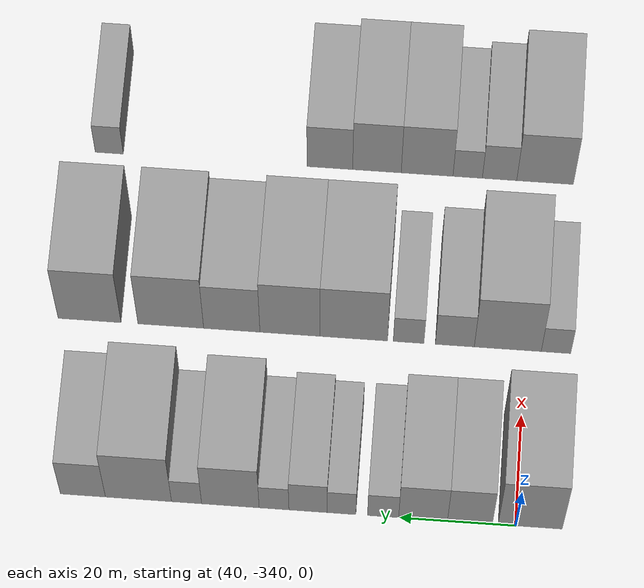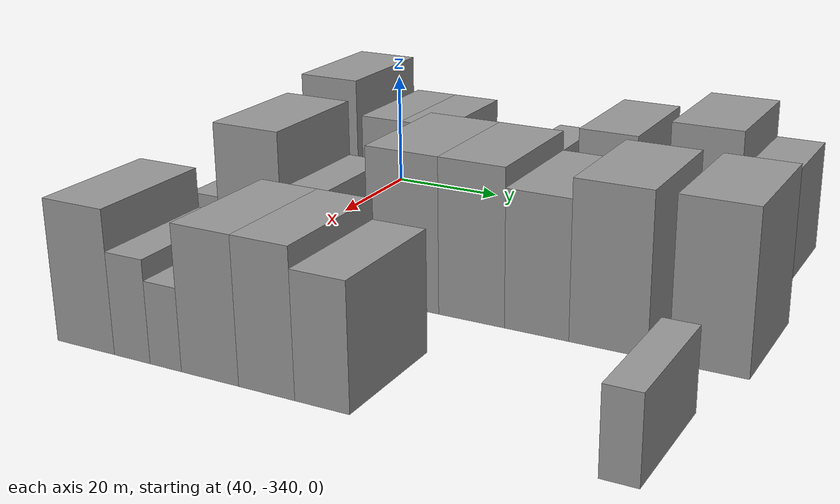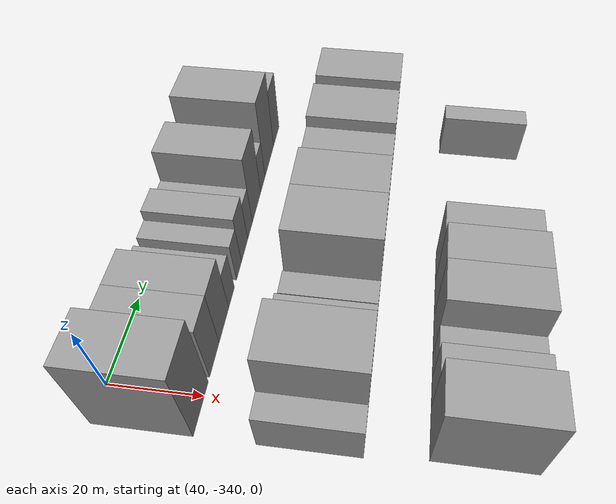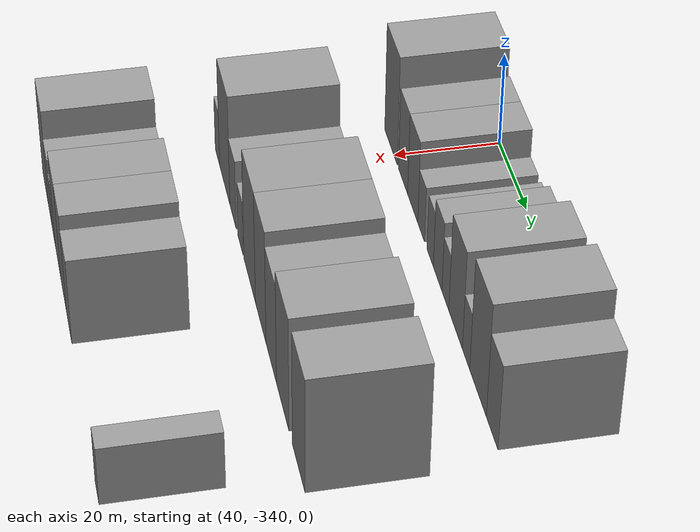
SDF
<sdf version="1.6">
 <world name="default">
  <model name="building_1">
   <static>1</static>
   <pose>50.0000 -342.4957 0 0.000000 0.000000 0.000000</pose>
   <link name="link">
    <pose>0 0 12.00 0 0 0</pose>
    <collision name="collision"><geometry><box><size>20.0000 11.0086 24.0000</size></box></geometry></collision>
    <visual name="visual">
     <cast_shadows>0</cast_shadows>
     <geometry><box><size>20.0000 11.0086 24.0000</size></box></geometry>
     <material>
      <script>
       <uri>model://grey_wall/materials/scripts</uri>
       <uri>model://grey_wall/materials/textures</uri>
       <name>vrc/grey_wall</name>
      </script>
     </material>
    </visual>
   </link>
  </model>
  <model name="building_2">
   <static>1</static>
   <pose>50.0000 -332.1267 0 0.000000 0.000000 0.000000</pose>
   <link name="link">
    <pose>0 0 9.00 0 0 0</pose>
    <collision name="collision"><geometry><box><size>20.0000 7.7294 18.0000</size></box></geometry></collision>
    <visual name="visual">
     <cast_shadows>0</cast_shadows>
     <geometry><box><size>20.0000 7.7294 18.0000</size></box></geometry>
     <material>
      <script>
       <uri>model://grey_wall/materials/scripts</uri>
       <uri>model://grey_wall/materials/textures</uri>
       <name>vrc/grey_wall</name>
      </script>
     </material>
    </visual>
   </link>
  </model>
  <model name="building_3">
   <static>1</static>
   <pose>50.0000 -324.0537 0 0.000000 0.000000 0.000000</pose>
   <link name="link">
    <pose>0 0 9.00 0 0 0</pose>
    <collision name="collision"><geometry><box><size>20.0000 8.4165 18.0000</size></box></geometry></collision>
    <visual name="visual">
     <cast_shadows>0</cast_shadows>
     <geometry><box><size>20.0000 8.4165 18.0000</size></box></geometry>
     <material>
      <script>
       <uri>model://grey_wall/materials/scripts</uri>
       <uri>model://grey_wall/materials/textures</uri>
       <name>vrc/grey_wall</name>
      </script>
     </material>
    </visual>
   </link>
  </model>
  <model name="building_4">
   <static>1</static>
   <pose>50.0000 -317.1631 0 0.000000 0.000000 0.000000</pose>
   <link name="link">
    <pose>0 0 6.00 0 0 0</pose>
    <collision name="collision"><geometry><box><size>20.0000 5.3648 12.0000</size></box></geometry></collision>
    <visual name="visual">
     <cast_shadows>0</cast_shadows>
     <geometry><box><size>20.0000 5.3648 12.0000</size></box></geometry>
     <material>
      <script>
       <uri>model://grey_wall/materials/scripts</uri>
       <uri>model://grey_wall/materials/textures</uri>
       <name>vrc/grey_wall</name>
      </script>
     </material>
    </visual>
   </link>
  </model>
  <model name="building_5">
   <static>1</static>
   <pose>50.0000 -310.0044 0 0.000000 0.000000 0.000000</pose>
   <link name="link">
    <pose>0 0 6.00 0 0 0</pose>
    <collision name="collision"><geometry><box><size>20.0000 4.9525 12.0000</size></box></geometry></collision>
    <visual name="visual">
     <cast_shadows>0</cast_shadows>
     <geometry><box><size>20.0000 4.9525 12.0000</size></box></geometry>
     <material>
      <script>
       <uri>model://grey_wall/materials/scripts</uri>
       <uri>model://grey_wall/materials/textures</uri>
       <name>vrc/grey_wall</name>
      </script>
     </material>
    </visual>
   </link>
  </model>
  <model name="building_6">
   <static>1</static>
   <pose>50.0000 -304.2239 0 0.000000 0.000000 0.000000</pose>
   <link name="link">
    <pose>0 0 7.50 0 0 0</pose>
    <collision name="collision"><geometry><box><size>20.0000 6.6086 15.0000</size></box></geometry></collision>
    <visual name="visual">
     <cast_shadows>0</cast_shadows>
     <geometry><box><size>20.0000 6.6086 15.0000</size></box></geometry>
     <material>
      <script>
       <uri>model://grey_wall/materials/scripts</uri>
       <uri>model://grey_wall/materials/textures</uri>
       <name>vrc/grey_wall</name>
      </script>
     </material>
    </visual>
   </link>
  </model>
  <model name="building_7">
   <static>1</static>
   <pose>50.0000 -298.3457 0 0.000000 0.000000 0.000000</pose>
   <link name="link">
    <pose>0 0 6.00 0 0 0</pose>
    <collision name="collision"><geometry><box><size>20.0000 5.1477 12.0000</size></box></geometry></collision>
    <visual name="visual">
     <cast_shadows>0</cast_shadows>
     <geometry><box><size>20.0000 5.1477 12.0000</size></box></geometry>
     <material>
      <script>
       <uri>model://grey_wall/materials/scripts</uri>
       <uri>model://grey_wall/materials/textures</uri>
       <name>vrc/grey_wall</name>
      </script>
     </material>
    </visual>
   </link>
  </model>
  <model name="building_8">
   <static>1</static>
   <pose>50.0000 -290.8053 0 0.000000 0.000000 0.000000</pose>
   <link name="link">
    <pose>0 0 10.50 0 0 0</pose>
    <collision name="collision"><geometry><box><size>20.0000 9.9332 21.0000</size></box></geometry></collision>
    <visual name="visual">
     <cast_shadows>0</cast_shadows>
     <geometry><box><size>20.0000 9.9332 21.0000</size></box></geometry>
     <material>
      <script>
       <uri>model://grey_wall/materials/scripts</uri>
       <uri>model://grey_wall/materials/textures</uri>
       <name>vrc/grey_wall</name>
      </script>
     </material>
    </visual>
   </link>
  </model>
  <model name="building_9">
   <static>1</static>
   <pose>50.0000 -283.2354 0 0.000000 0.000000 0.000000</pose>
   <link name="link">
    <pose>0 0 6.00 0 0 0</pose>
    <collision name="collision"><geometry><box><size>20.0000 5.2066 12.0000</size></box></geometry></collision>
    <visual name="visual">
     <cast_shadows>0</cast_shadows>
     <geometry><box><size>20.0000 5.2066 12.0000</size></box></geometry>
     <material>
      <script>
       <uri>model://grey_wall/materials/scripts</uri>
       <uri>model://grey_wall/materials/textures</uri>
       <name>vrc/grey_wall</name>
      </script>
     </material>
    </visual>
   </link>
  </model>
  <model name="building_10">
   <static>1</static>
   <pose>50.0000 -274.9142 0 0.000000 0.000000 0.000000</pose>
   <link name="link">
    <pose>0 0 12.00 0 0 0</pose>
    <collision name="collision"><geometry><box><size>20.0000 11.4358 24.0000</size></box></geometry></collision>
    <visual name="visual">
     <cast_shadows>0</cast_shadows>
     <geometry><box><size>20.0000 11.4358 24.0000</size></box></geometry>
     <material>
      <script>
       <uri>model://grey_wall/materials/scripts</uri>
       <uri>model://grey_wall/materials/textures</uri>
       <name>vrc/grey_wall</name>
      </script>
     </material>
    </visual>
   </link>
  </model>
  <model name="building_11">
   <static>1</static>
   <pose>50.0000 -265.3020 0 0.000000 0.000000 0.000000</pose>
   <link name="link">
    <pose>0 0 9.00 0 0 0</pose>
    <collision name="collision"><geometry><box><size>20.0000 7.7885 18.0000</size></box></geometry></collision>
    <visual name="visual">
     <cast_shadows>0</cast_shadows>
     <geometry><box><size>20.0000 7.7885 18.0000</size></box></geometry>
     <material>
      <script>
       <uri>model://grey_wall/materials/scripts</uri>
       <uri>model://grey_wall/materials/textures</uri>
       <name>vrc/grey_wall</name>
      </script>
     </material>
    </visual>
   </link>
  </model>
  <model name="building_74">
   <static>1</static>
   <pose>82.0000 -345.4135 0 0.000000 0.000000 0.000000</pose>
   <link name="link">
    <pose>0 0 6.00 0 0 0</pose>
    <collision name="collision"><geometry><box><size>20.0000 5.1729 12.0000</size></box></geometry></collision>
    <visual name="visual">
     <cast_shadows>0</cast_shadows>
     <geometry><box><size>20.0000 5.1729 12.0000</size></box></geometry>
     <material>
      <script>
       <uri>model://grey_wall/materials/scripts</uri>
       <uri>model://grey_wall/materials/textures</uri>
       <name>vrc/grey_wall</name>
      </script>
     </material>
    </visual>
   </link>
  </model>
  <model name="building_75">
   <static>1</static>
   <pose>82.0000 -336.9484 0 0.000000 0.000000 0.000000</pose>
   <link name="link">
    <pose>0 0 12.00 0 0 0</pose>
    <collision name="collision"><geometry><box><size>20.0000 11.7573 24.0000</size></box></geometry></collision>
    <visual name="visual">
     <cast_shadows>0</cast_shadows>
     <geometry><box><size>20.0000 11.7573 24.0000</size></box></geometry>
     <material>
      <script>
       <uri>model://grey_wall/materials/scripts</uri>
       <uri>model://grey_wall/materials/textures</uri>
       <name>vrc/grey_wall</name>
      </script>
     </material>
    </visual>
   </link>
  </model>
  <model name="building_76">
   <static>1</static>
   <pose>82.0000 -327.6473 0 0.000000 0.000000 0.000000</pose>
   <link name="link">
    <pose>0 0 7.50 0 0 0</pose>
    <collision name="collision"><geometry><box><size>20.0000 6.8450 15.0000</size></box></geometry></collision>
    <visual name="visual">
     <cast_shadows>0</cast_shadows>
     <geometry><box><size>20.0000 6.8450 15.0000</size></box></geometry>
     <material>
      <script>
       <uri>model://grey_wall/materials/scripts</uri>
       <uri>model://grey_wall/materials/textures</uri>
       <name>vrc/grey_wall</name>
      </script>
     </material>
    </visual>
   </link>
  </model>
  <model name="building_77">
   <static>1</static>
   <pose>82.0000 -319.5282 0 0.000000 0.000000 0.000000</pose>
   <link name="link">
    <pose>0 0 6.00 0 0 0</pose>
    <collision name="collision"><geometry><box><size>20.0000 5.3932 12.0000</size></box></geometry></collision>
    <visual name="visual">
     <cast_shadows>0</cast_shadows>
     <geometry><box><size>20.0000 5.3932 12.0000</size></box></geometry>
     <material>
      <script>
       <uri>model://grey_wall/materials/scripts</uri>
       <uri>model://grey_wall/materials/textures</uri>
       <name>vrc/grey_wall</name>
      </script>
     </material>
    </visual>
   </link>
  </model>
  <model name="building_78">
   <static>1</static>
   <pose>82.0000 -309.8970 0 0.000000 0.000000 0.000000</pose>
   <link name="link">
    <pose>0 0 12.00 0 0 0</pose>
    <collision name="collision"><geometry><box><size>20.0000 11.8692 24.0000</size></box></geometry></collision>
    <visual name="visual">
     <cast_shadows>0</cast_shadows>
     <geometry><box><size>20.0000 11.8692 24.0000</size></box></geometry>
     <material>
      <script>
       <uri>model://grey_wall/materials/scripts</uri>
       <uri>model://grey_wall/materials/textures</uri>
       <name>vrc/grey_wall</name>
      </script>
     </material>
    </visual>
   </link>
  </model>
  <model name="building_79">
   <static>1</static>
   <pose>82.0000 -298.6651 0 0.000000 0.000000 0.000000</pose>
   <link name="link">
    <pose>0 0 12.00 0 0 0</pose>
    <collision name="collision"><geometry><box><size>20.0000 10.5946 24.0000</size></box></geometry></collision>
    <visual name="visual">
     <cast_shadows>0</cast_shadows>
     <geometry><box><size>20.0000 10.5946 24.0000</size></box></geometry>
     <material>
      <script>
       <uri>model://grey_wall/materials/scripts</uri>
       <uri>model://grey_wall/materials/textures</uri>
       <name>vrc/grey_wall</name>
      </script>
     </material>
    </visual>
   </link>
  </model>
  <model name="building_80">
   <static>1</static>
   <pose>82.0000 -288.4018 0 0.000000 0.000000 0.000000</pose>
   <link name="link">
    <pose>0 0 10.50 0 0 0</pose>
    <collision name="collision"><geometry><box><size>20.0000 9.9319 21.0000</size></box></geometry></collision>
    <visual name="visual">
     <cast_shadows>0</cast_shadows>
     <geometry><box><size>20.0000 9.9319 21.0000</size></box></geometry>
     <material>
      <script>
       <uri>model://grey_wall/materials/scripts</uri>
       <uri>model://grey_wall/materials/textures</uri>
       <name>vrc/grey_wall</name>
      </script>
     </material>
    </visual>
   </link>
  </model>
  <model name="building_81">
   <static>1</static>
   <pose>82.0000 -277.6458 0 0.000000 0.000000 0.000000</pose>
   <link name="link">
    <pose>0 0 12.00 0 0 0</pose>
    <collision name="collision"><geometry><box><size>20.0000 11.5801 24.0000</size></box></geometry></collision>
    <visual name="visual">
     <cast_shadows>0</cast_shadows>
     <geometry><box><size>20.0000 11.5801 24.0000</size></box></geometry>
     <material>
      <script>
       <uri>model://grey_wall/materials/scripts</uri>
       <uri>model://grey_wall/materials/textures</uri>
       <name>vrc/grey_wall</name>
      </script>
     </material>
    </visual>
   </link>
  </model>
  <model name="building_82">
   <static>1</static>
   <pose>82.0000 -263.3040 0 0.000000 0.000000 0.000000</pose>
   <link name="link">
    <pose>0 0 12.00 0 0 0</pose>
    <collision name="collision"><geometry><box><size>20.0000 11.1036 24.0000</size></box></geometry></collision>
    <visual name="visual">
     <cast_shadows>0</cast_shadows>
     <geometry><box><size>20.0000 11.1036 24.0000</size></box></geometry>
     <material>
      <script>
       <uri>model://grey_wall/materials/scripts</uri>
       <uri>model://grey_wall/materials/textures</uri>
       <name>vrc/grey_wall</name>
      </script>
     </material>
    </visual>
   </link>
  </model>
  <model name="building_149">
   <static>1</static>
   <pose>114.0000 -341.9334 0 0.000000 0.000000 0.000000</pose>
   <link name="link">
    <pose>0 0 10.50 0 0 0</pose>
    <collision name="collision"><geometry><box><size>20.0000 10.1333 21.0000</size></box></geometry></collision>
    <visual name="visual">
     <cast_shadows>0</cast_shadows>
     <geometry><box><size>20.0000 10.1333 21.0000</size></box></geometry>
     <material>
      <script>
       <uri>model://grey_wall/materials/scripts</uri>
       <uri>model://grey_wall/materials/textures</uri>
       <name>vrc/grey_wall</name>
      </script>
     </material>
    </visual>
   </link>
  </model>
  <model name="building_150">
   <static>1</static>
   <pose>114.0000 -333.7881 0 0.000000 0.000000 0.000000</pose>
   <link name="link">
    <pose>0 0 7.50 0 0 0</pose>
    <collision name="collision"><geometry><box><size>20.0000 6.1573 15.0000</size></box></geometry></collision>
    <visual name="visual">
     <cast_shadows>0</cast_shadows>
     <geometry><box><size>20.0000 6.1573 15.0000</size></box></geometry>
     <material>
      <script>
       <uri>model://grey_wall/materials/scripts</uri>
       <uri>model://grey_wall/materials/textures</uri>
       <name>vrc/grey_wall</name>
      </script>
     </material>
    </visual>
   </link>
  </model>
  <model name="building_151">
   <static>1</static>
   <pose>114.0000 -328.0776 0 0.000000 0.000000 0.000000</pose>
   <link name="link">
    <pose>0 0 6.00 0 0 0</pose>
    <collision name="collision"><geometry><box><size>20.0000 5.2637 12.0000</size></box></geometry></collision>
    <visual name="visual">
     <cast_shadows>0</cast_shadows>
     <geometry><box><size>20.0000 5.2637 12.0000</size></box></geometry>
     <material>
      <script>
       <uri>model://grey_wall/materials/scripts</uri>
       <uri>model://grey_wall/materials/textures</uri>
       <name>vrc/grey_wall</name>
      </script>
     </material>
    </visual>
   </link>
  </model>
  <model name="building_152">
   <static>1</static>
   <pose>114.0000 -320.8091 0 0.000000 0.000000 0.000000</pose>
   <link name="link">
    <pose>0 0 10.50 0 0 0</pose>
    <collision name="collision"><geometry><box><size>20.0000 9.2734 21.0000</size></box></geometry></collision>
    <visual name="visual">
     <cast_shadows>0</cast_shadows>
     <geometry><box><size>20.0000 9.2734 21.0000</size></box></geometry>
     <material>
      <script>
       <uri>model://grey_wall/materials/scripts</uri>
       <uri>model://grey_wall/materials/textures</uri>
       <name>vrc/grey_wall</name>
      </script>
     </material>
    </visual>
   </link>
  </model>
  <model name="building_153">
   <static>1</static>
   <pose>114.0000 -311.8167 0 0.000000 0.000000 0.000000</pose>
   <link name="link">
    <pose>0 0 10.50 0 0 0</pose>
    <collision name="collision"><geometry><box><size>20.0000 8.7114 21.0000</size></box></geometry></collision>
    <visual name="visual">
     <cast_shadows>0</cast_shadows>
     <geometry><box><size>20.0000 8.7114 21.0000</size></box></geometry>
     <material>
      <script>
       <uri>model://grey_wall/materials/scripts</uri>
       <uri>model://grey_wall/materials/textures</uri>
       <name>vrc/grey_wall</name>
      </script>
     </material>
    </visual>
   </link>
  </model>
  <model name="building_154">
   <static>1</static>
   <pose>114.0000 -303.3777 0 0.000000 0.000000 0.000000</pose>
   <link name="link">
    <pose>0 0 9.00 0 0 0</pose>
    <collision name="collision"><geometry><box><size>20.0000 8.1667 18.0000</size></box></geometry></collision>
    <visual name="visual">
     <cast_shadows>0</cast_shadows>
     <geometry><box><size>20.0000 8.1667 18.0000</size></box></geometry>
     <material>
      <script>
       <uri>model://grey_wall/materials/scripts</uri>
       <uri>model://grey_wall/materials/textures</uri>
       <name>vrc/grey_wall</name>
      </script>
     </material>
    </visual>
   </link>
  </model>
  <model name="building_155">
   <static>1</static>
   <pose>114.0000 -263.7118 0 0.000000 0.000000 0.000000</pose>
   <link name="link">
    <pose>0 0 6.00 0 0 0</pose>
    <collision name="collision"><geometry><box><size>20.0000 5.0550 12.0000</size></box></geometry></collision>
    <visual name="visual">
     <cast_shadows>0</cast_shadows>
     <geometry><box><size>20.0000 5.0550 12.0000</size></box></geometry>
     <material>
      <script>
       <uri>model://grey_wall/materials/scripts</uri>
       <uri>model://grey_wall/materials/textures</uri>
       <name>vrc/grey_wall</name>
      </script>
     </material>
    </visual>
   </link>
  </model>
 </world>
</sdf>
